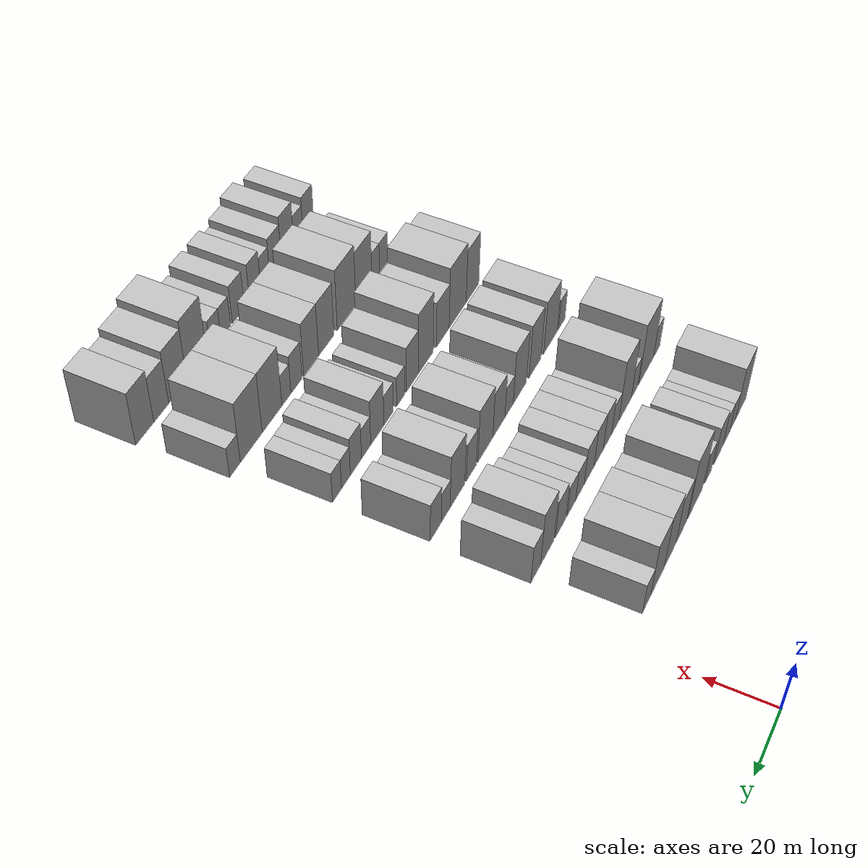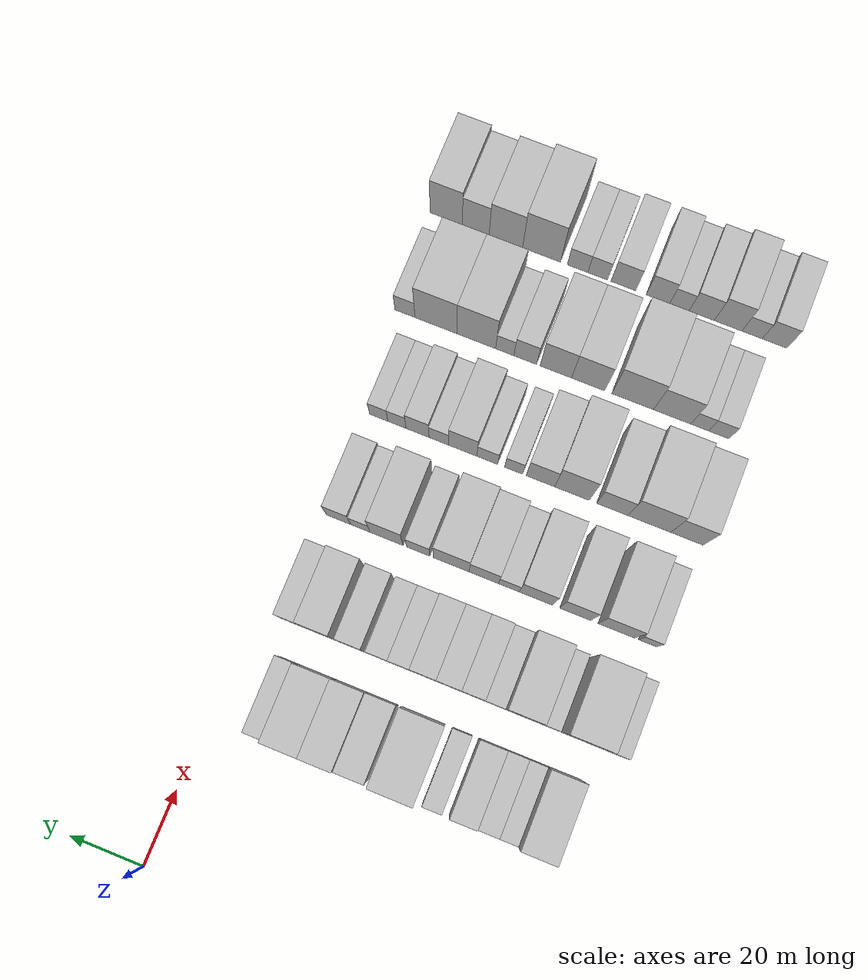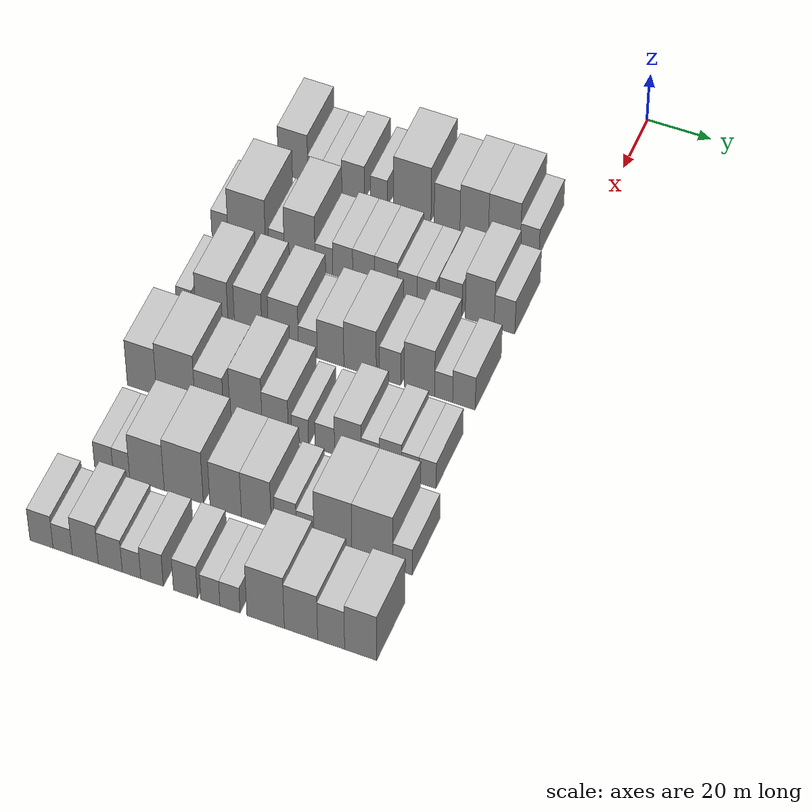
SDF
<sdf version="1.6">
 <world name="default">
  <model name="building_51">
   <static>1</static>
   <pose>50.0000 -87.9250 0 0.000000 0.000000 0.000000</pose>
   <link name="link">
    <pose>0 0 10.50 0 0 0</pose>
    <collision name="collision"><geometry><box><size>20.0000 9.3427 21.0000</size></box></geometry></collision>
    <visual name="visual">
     <cast_shadows>0</cast_shadows>
     <geometry><box><size>20.0000 9.3427 21.0000</size></box></geometry>
     <material>
      <script>
       <uri>model://HANNAS_wall/materials/scripts</uri>
       <uri>model://HANNAS_wall/materials/textures</uri>
       <name>vrc/HANNAS_wall</name>
      </script>
     </material>
    </visual>
   </link>
  </model>
  <model name="building_52">
   <static>1</static>
   <pose>50.0000 -80.8383 0 0.000000 0.000000 0.000000</pose>
   <link name="link">
    <pose>0 0 6.00 0 0 0</pose>
    <collision name="collision"><geometry><box><size>20.0000 4.8306 12.0000</size></box></geometry></collision>
    <visual name="visual">
     <cast_shadows>0</cast_shadows>
     <geometry><box><size>20.0000 4.8306 12.0000</size></box></geometry>
     <material>
      <script>
       <uri>model://HANNAS_wall/materials/scripts</uri>
       <uri>model://HANNAS_wall/materials/textures</uri>
       <name>vrc/HANNAS_wall</name>
      </script>
     </material>
    </visual>
   </link>
  </model>
  <model name="building_53">
   <static>1</static>
   <pose>50.0000 -75.5484 0 0.000000 0.000000 0.000000</pose>
   <link name="link">
    <pose>0 0 6.00 0 0 0</pose>
    <collision name="collision"><geometry><box><size>20.0000 5.7492 12.0000</size></box></geometry></collision>
    <visual name="visual">
     <cast_shadows>0</cast_shadows>
     <geometry><box><size>20.0000 5.7492 12.0000</size></box></geometry>
     <material>
      <script>
       <uri>model://HANNAS_wall/materials/scripts</uri>
       <uri>model://HANNAS_wall/materials/textures</uri>
       <name>vrc/HANNAS_wall</name>
      </script>
     </material>
    </visual>
   </link>
  </model>
  <model name="building_54">
   <static>1</static>
   <pose>50.0000 -69.0643 0 0.000000 0.000000 0.000000</pose>
   <link name="link">
    <pose>0 0 7.50 0 0 0</pose>
    <collision name="collision"><geometry><box><size>20.0000 7.2192 15.0000</size></box></geometry></collision>
    <visual name="visual">
     <cast_shadows>0</cast_shadows>
     <geometry><box><size>20.0000 7.2192 15.0000</size></box></geometry>
     <material>
      <script>
       <uri>model://HANNAS_wall/materials/scripts</uri>
       <uri>model://HANNAS_wall/materials/textures</uri>
       <name>vrc/HANNAS_wall</name>
      </script>
     </material>
    </visual>
   </link>
  </model>
  <model name="building_55">
   <static>1</static>
   <pose>50.0000 -60.8685 0 0.000000 0.000000 0.000000</pose>
   <link name="link">
    <pose>0 0 6.00 0 0 0</pose>
    <collision name="collision"><geometry><box><size>20.0000 5.1723 12.0000</size></box></geometry></collision>
    <visual name="visual">
     <cast_shadows>0</cast_shadows>
     <geometry><box><size>20.0000 5.1723 12.0000</size></box></geometry>
     <material>
      <script>
       <uri>model://HANNAS_wall/materials/scripts</uri>
       <uri>model://HANNAS_wall/materials/textures</uri>
       <name>vrc/HANNAS_wall</name>
      </script>
     </material>
    </visual>
   </link>
  </model>
  <model name="building_56">
   <static>1</static>
   <pose>50.0000 -50.4555 0 0.000000 0.000000 0.000000</pose>
   <link name="link">
    <pose>0 0 12.00 0 0 0</pose>
    <collision name="collision"><geometry><box><size>20.0000 11.6537 24.0000</size></box></geometry></collision>
    <visual name="visual">
     <cast_shadows>0</cast_shadows>
     <geometry><box><size>20.0000 11.6537 24.0000</size></box></geometry>
     <material>
      <script>
       <uri>model://HANNAS_wall/materials/scripts</uri>
       <uri>model://HANNAS_wall/materials/textures</uri>
       <name>vrc/HANNAS_wall</name>
      </script>
     </material>
    </visual>
   </link>
  </model>
  <model name="building_57">
   <static>1</static>
   <pose>50.0000 -39.6158 0 0.000000 0.000000 0.000000</pose>
   <link name="link">
    <pose>0 0 9.00 0 0 0</pose>
    <collision name="collision"><geometry><box><size>20.0000 8.0258 18.0000</size></box></geometry></collision>
    <visual name="visual">
     <cast_shadows>0</cast_shadows>
     <geometry><box><size>20.0000 8.0258 18.0000</size></box></geometry>
     <material>
      <script>
       <uri>model://HANNAS_wall/materials/scripts</uri>
       <uri>model://HANNAS_wall/materials/textures</uri>
       <name>vrc/HANNAS_wall</name>
      </script>
     </material>
    </visual>
   </link>
  </model>
  <model name="building_58">
   <static>1</static>
   <pose>50.0000 -31.1986 0 0.000000 0.000000 0.000000</pose>
   <link name="link">
    <pose>0 0 10.50 0 0 0</pose>
    <collision name="collision"><geometry><box><size>20.0000 8.8084 21.0000</size></box></geometry></collision>
    <visual name="visual">
     <cast_shadows>0</cast_shadows>
     <geometry><box><size>20.0000 8.8084 21.0000</size></box></geometry>
     <material>
      <script>
       <uri>model://HANNAS_wall/materials/scripts</uri>
       <uri>model://HANNAS_wall/materials/textures</uri>
       <name>vrc/HANNAS_wall</name>
      </script>
     </material>
    </visual>
   </link>
  </model>
  <model name="building_59">
   <static>1</static>
   <pose>50.0000 -21.8745 0 0.000000 0.000000 0.000000</pose>
   <link name="link">
    <pose>0 0 10.50 0 0 0</pose>
    <collision name="collision"><geometry><box><size>20.0000 9.8399 21.0000</size></box></geometry></collision>
    <visual name="visual">
     <cast_shadows>0</cast_shadows>
     <geometry><box><size>20.0000 9.8399 21.0000</size></box></geometry>
     <material>
      <script>
       <uri>model://HANNAS_wall/materials/scripts</uri>
       <uri>model://HANNAS_wall/materials/textures</uri>
       <name>vrc/HANNAS_wall</name>
      </script>
     </material>
    </visual>
   </link>
  </model>
  <model name="building_60">
   <static>1</static>
   <pose>50.0000 -14.0506 0 0.000000 0.000000 0.000000</pose>
   <link name="link">
    <pose>0 0 6.00 0 0 0</pose>
    <collision name="collision"><geometry><box><size>20.0000 5.8078 12.0000</size></box></geometry></collision>
    <visual name="visual">
     <cast_shadows>0</cast_shadows>
     <geometry><box><size>20.0000 5.8078 12.0000</size></box></geometry>
     <material>
      <script>
       <uri>model://HANNAS_wall/materials/scripts</uri>
       <uri>model://HANNAS_wall/materials/textures</uri>
       <name>vrc/HANNAS_wall</name>
      </script>
     </material>
    </visual>
   </link>
  </model>
  <model name="building_165">
   <static>1</static>
   <pose>79.0000 -98.4774 0 0.000000 0.000000 0.000000</pose>
   <link name="link">
    <pose>0 0 6.00 0 0 0</pose>
    <collision name="collision"><geometry><box><size>20.0000 5.1457 12.0000</size></box></geometry></collision>
    <visual name="visual">
     <cast_shadows>0</cast_shadows>
     <geometry><box><size>20.0000 5.1457 12.0000</size></box></geometry>
     <material>
      <script>
       <uri>model://HANNAS_wall/materials/scripts</uri>
       <uri>model://HANNAS_wall/materials/textures</uri>
       <name>vrc/HANNAS_wall</name>
      </script>
     </material>
    </visual>
   </link>
  </model>
  <model name="building_166">
   <static>1</static>
   <pose>79.0000 -90.0048 0 0.000000 0.000000 0.000000</pose>
   <link name="link">
    <pose>0 0 12.00 0 0 0</pose>
    <collision name="collision"><geometry><box><size>20.0000 11.7995 24.0000</size></box></geometry></collision>
    <visual name="visual">
     <cast_shadows>0</cast_shadows>
     <geometry><box><size>20.0000 11.7995 24.0000</size></box></geometry>
     <material>
      <script>
       <uri>model://HANNAS_wall/materials/scripts</uri>
       <uri>model://HANNAS_wall/materials/textures</uri>
       <name>vrc/HANNAS_wall</name>
      </script>
     </material>
    </visual>
   </link>
  </model>
  <model name="building_167">
   <static>1</static>
   <pose>79.0000 -80.6859 0 0.000000 0.000000 0.000000</pose>
   <link name="link">
    <pose>0 0 6.00 0 0 0</pose>
    <collision name="collision"><geometry><box><size>20.0000 4.8383 12.0000</size></box></geometry></collision>
    <visual name="visual">
     <cast_shadows>0</cast_shadows>
     <geometry><box><size>20.0000 4.8383 12.0000</size></box></geometry>
     <material>
      <script>
       <uri>model://HANNAS_wall/materials/scripts</uri>
       <uri>model://HANNAS_wall/materials/textures</uri>
       <name>vrc/HANNAS_wall</name>
      </script>
     </material>
    </visual>
   </link>
  </model>
  <model name="building_168">
   <static>1</static>
   <pose>79.0000 -73.4651 0 0.000000 0.000000 0.000000</pose>
   <link name="link">
    <pose>0 0 12.00 0 0 0</pose>
    <collision name="collision"><geometry><box><size>20.0000 9.6032 24.0000</size></box></geometry></collision>
    <visual name="visual">
     <cast_shadows>0</cast_shadows>
     <geometry><box><size>20.0000 9.6032 24.0000</size></box></geometry>
     <material>
      <script>
       <uri>model://HANNAS_wall/materials/scripts</uri>
       <uri>model://HANNAS_wall/materials/textures</uri>
       <name>vrc/HANNAS_wall</name>
      </script>
     </material>
    </visual>
   </link>
  </model>
  <model name="building_169">
   <static>1</static>
   <pose>79.0000 -65.9475 0 0.000000 0.000000 0.000000</pose>
   <link name="link">
    <pose>0 0 6.00 0 0 0</pose>
    <collision name="collision"><geometry><box><size>20.0000 5.4320 12.0000</size></box></geometry></collision>
    <visual name="visual">
     <cast_shadows>0</cast_shadows>
     <geometry><box><size>20.0000 5.4320 12.0000</size></box></geometry>
     <material>
      <script>
       <uri>model://HANNAS_wall/materials/scripts</uri>
       <uri>model://HANNAS_wall/materials/textures</uri>
       <name>vrc/HANNAS_wall</name>
      </script>
     </material>
    </visual>
   </link>
  </model>
  <model name="building_170">
   <static>1</static>
   <pose>79.0000 -60.1310 0 0.000000 0.000000 0.000000</pose>
   <link name="link">
    <pose>0 0 7.50 0 0 0</pose>
    <collision name="collision"><geometry><box><size>20.0000 6.2009 15.0000</size></box></geometry></collision>
    <visual name="visual">
     <cast_shadows>0</cast_shadows>
     <geometry><box><size>20.0000 6.2009 15.0000</size></box></geometry>
     <material>
      <script>
       <uri>model://HANNAS_wall/materials/scripts</uri>
       <uri>model://HANNAS_wall/materials/textures</uri>
       <name>vrc/HANNAS_wall</name>
      </script>
     </material>
    </visual>
   </link>
  </model>
  <model name="building_171">
   <static>1</static>
   <pose>79.0000 -53.6498 0 0.000000 0.000000 0.000000</pose>
   <link name="link">
    <pose>0 0 7.50 0 0 0</pose>
    <collision name="collision"><geometry><box><size>20.0000 6.7614 15.0000</size></box></geometry></collision>
    <visual name="visual">
     <cast_shadows>0</cast_shadows>
     <geometry><box><size>20.0000 6.7614 15.0000</size></box></geometry>
     <material>
      <script>
       <uri>model://HANNAS_wall/materials/scripts</uri>
       <uri>model://HANNAS_wall/materials/textures</uri>
       <name>vrc/HANNAS_wall</name>
      </script>
     </material>
    </visual>
   </link>
  </model>
  <model name="building_172">
   <static>1</static>
   <pose>79.0000 -46.7324 0 0.000000 0.000000 0.000000</pose>
   <link name="link">
    <pose>0 0 7.50 0 0 0</pose>
    <collision name="collision"><geometry><box><size>20.0000 7.0735 15.0000</size></box></geometry></collision>
    <visual name="visual">
     <cast_shadows>0</cast_shadows>
     <geometry><box><size>20.0000 7.0735 15.0000</size></box></geometry>
     <material>
      <script>
       <uri>model://HANNAS_wall/materials/scripts</uri>
       <uri>model://HANNAS_wall/materials/textures</uri>
       <name>vrc/HANNAS_wall</name>
      </script>
     </material>
    </visual>
   </link>
  </model>
  <model name="building_173">
   <static>1</static>
   <pose>79.0000 -40.2377 0 0.000000 0.000000 0.000000</pose>
   <link name="link">
    <pose>0 0 6.00 0 0 0</pose>
    <collision name="collision"><geometry><box><size>20.0000 5.9158 12.0000</size></box></geometry></collision>
    <visual name="visual">
     <cast_shadows>0</cast_shadows>
     <geometry><box><size>20.0000 5.9158 12.0000</size></box></geometry>
     <material>
      <script>
       <uri>model://HANNAS_wall/materials/scripts</uri>
       <uri>model://HANNAS_wall/materials/textures</uri>
       <name>vrc/HANNAS_wall</name>
      </script>
     </material>
    </visual>
   </link>
  </model>
  <model name="building_174">
   <static>1</static>
   <pose>79.0000 -34.3512 0 0.000000 0.000000 0.000000</pose>
   <link name="link">
    <pose>0 0 6.00 0 0 0</pose>
    <collision name="collision"><geometry><box><size>20.0000 5.8573 12.0000</size></box></geometry></collision>
    <visual name="visual">
     <cast_shadows>0</cast_shadows>
     <geometry><box><size>20.0000 5.8573 12.0000</size></box></geometry>
     <material>
      <script>
       <uri>model://HANNAS_wall/materials/scripts</uri>
       <uri>model://HANNAS_wall/materials/textures</uri>
       <name>vrc/HANNAS_wall</name>
      </script>
     </material>
    </visual>
   </link>
  </model>
  <model name="building_175">
   <static>1</static>
   <pose>79.0000 -26.9290 0 0.000000 0.000000 0.000000</pose>
   <link name="link">
    <pose>0 0 7.50 0 0 0</pose>
    <collision name="collision"><geometry><box><size>20.0000 6.9871 15.0000</size></box></geometry></collision>
    <visual name="visual">
     <cast_shadows>0</cast_shadows>
     <geometry><box><size>20.0000 6.9871 15.0000</size></box></geometry>
     <material>
      <script>
       <uri>model://HANNAS_wall/materials/scripts</uri>
       <uri>model://HANNAS_wall/materials/textures</uri>
       <name>vrc/HANNAS_wall</name>
      </script>
     </material>
    </visual>
   </link>
  </model>
  <model name="building_176">
   <static>1</static>
   <pose>79.0000 -18.0084 0 0.000000 0.000000 0.000000</pose>
   <link name="link">
    <pose>0 0 10.50 0 0 0</pose>
    <collision name="collision"><geometry><box><size>20.0000 8.8540 21.0000</size></box></geometry></collision>
    <visual name="visual">
     <cast_shadows>0</cast_shadows>
     <geometry><box><size>20.0000 8.8540 21.0000</size></box></geometry>
     <material>
      <script>
       <uri>model://HANNAS_wall/materials/scripts</uri>
       <uri>model://HANNAS_wall/materials/textures</uri>
       <name>vrc/HANNAS_wall</name>
      </script>
     </material>
    </visual>
   </link>
  </model>
  <model name="building_177">
   <static>1</static>
   <pose>79.0000 -10.4417 0 0.000000 0.000000 0.000000</pose>
   <link name="link">
    <pose>0 0 7.50 0 0 0</pose>
    <collision name="collision"><geometry><box><size>20.0000 6.2794 15.0000</size></box></geometry></collision>
    <visual name="visual">
     <cast_shadows>0</cast_shadows>
     <geometry><box><size>20.0000 6.2794 15.0000</size></box></geometry>
     <material>
      <script>
       <uri>model://HANNAS_wall/materials/scripts</uri>
       <uri>model://HANNAS_wall/materials/textures</uri>
       <name>vrc/HANNAS_wall</name>
      </script>
     </material>
    </visual>
   </link>
  </model>
  <model name="building_285">
   <static>1</static>
   <pose>108.0000 -96.6257 0 0.000000 0.000000 0.000000</pose>
   <link name="link">
    <pose>0 0 6.00 0 0 0</pose>
    <collision name="collision"><geometry><box><size>20.0000 4.9257 12.0000</size></box></geometry></collision>
    <visual name="visual">
     <cast_shadows>0</cast_shadows>
     <geometry><box><size>20.0000 4.9257 12.0000</size></box></geometry>
     <material>
      <script>
       <uri>model://HANNAS_wall/materials/scripts</uri>
       <uri>model://HANNAS_wall/materials/textures</uri>
       <name>vrc/HANNAS_wall</name>
      </script>
     </material>
    </visual>
   </link>
  </model>
  <model name="building_286">
   <static>1</static>
   <pose>108.0000 -88.1577 0 0.000000 0.000000 0.000000</pose>
   <link name="link">
    <pose>0 0 10.50 0 0 0</pose>
    <collision name="collision"><geometry><box><size>20.0000 10.0102 21.0000</size></box></geometry></collision>
    <visual name="visual">
     <cast_shadows>0</cast_shadows>
     <geometry><box><size>20.0000 10.0102 21.0000</size></box></geometry>
     <material>
      <script>
       <uri>model://HANNAS_wall/materials/scripts</uri>
       <uri>model://HANNAS_wall/materials/textures</uri>
       <name>vrc/HANNAS_wall</name>
      </script>
     </material>
    </visual>
   </link>
  </model>
  <model name="building_287">
   <static>1</static>
   <pose>108.0000 -76.9083 0 0.000000 0.000000 0.000000</pose>
   <link name="link">
    <pose>0 0 10.50 0 0 0</pose>
    <collision name="collision"><geometry><box><size>20.0000 8.4886 21.0000</size></box></geometry></collision>
    <visual name="visual">
     <cast_shadows>0</cast_shadows>
     <geometry><box><size>20.0000 8.4886 21.0000</size></box></geometry>
     <material>
      <script>
       <uri>model://HANNAS_wall/materials/scripts</uri>
       <uri>model://HANNAS_wall/materials/textures</uri>
       <name>vrc/HANNAS_wall</name>
      </script>
     </material>
    </visual>
   </link>
  </model>
  <model name="building_288">
   <static>1</static>
   <pose>108.0000 -66.0796 0 0.000000 0.000000 0.000000</pose>
   <link name="link">
    <pose>0 0 10.50 0 0 0</pose>
    <collision name="collision"><geometry><box><size>20.0000 9.1687 21.0000</size></box></geometry></collision>
    <visual name="visual">
     <cast_shadows>0</cast_shadows>
     <geometry><box><size>20.0000 9.1687 21.0000</size></box></geometry>
     <material>
      <script>
       <uri>model://HANNAS_wall/materials/scripts</uri>
       <uri>model://HANNAS_wall/materials/textures</uri>
       <name>vrc/HANNAS_wall</name>
      </script>
     </material>
    </visual>
   </link>
  </model>
  <model name="building_289">
   <static>1</static>
   <pose>108.0000 -58.6425 0 0.000000 0.000000 0.000000</pose>
   <link name="link">
    <pose>0 0 6.00 0 0 0</pose>
    <collision name="collision"><geometry><box><size>20.0000 5.7055 12.0000</size></box></geometry></collision>
    <visual name="visual">
     <cast_shadows>0</cast_shadows>
     <geometry><box><size>20.0000 5.7055 12.0000</size></box></geometry>
     <material>
      <script>
       <uri>model://HANNAS_wall/materials/scripts</uri>
       <uri>model://HANNAS_wall/materials/textures</uri>
       <name>vrc/HANNAS_wall</name>
      </script>
     </material>
    </visual>
   </link>
  </model>
  <model name="building_290">
   <static>1</static>
   <pose>108.0000 -51.7189 0 0.000000 0.000000 0.000000</pose>
   <link name="link">
    <pose>0 0 9.00 0 0 0</pose>
    <collision name="collision"><geometry><box><size>20.0000 8.1418 18.0000</size></box></geometry></collision>
    <visual name="visual">
     <cast_shadows>0</cast_shadows>
     <geometry><box><size>20.0000 8.1418 18.0000</size></box></geometry>
     <material>
      <script>
       <uri>model://HANNAS_wall/materials/scripts</uri>
       <uri>model://HANNAS_wall/materials/textures</uri>
       <name>vrc/HANNAS_wall</name>
      </script>
     </material>
    </visual>
   </link>
  </model>
  <model name="building_291">
   <static>1</static>
   <pose>108.0000 -42.7160 0 0.000000 0.000000 0.000000</pose>
   <link name="link">
    <pose>0 0 10.50 0 0 0</pose>
    <collision name="collision"><geometry><box><size>20.0000 9.8641 21.0000</size></box></geometry></collision>
    <visual name="visual">
     <cast_shadows>0</cast_shadows>
     <geometry><box><size>20.0000 9.8641 21.0000</size></box></geometry>
     <material>
      <script>
       <uri>model://HANNAS_wall/materials/scripts</uri>
       <uri>model://HANNAS_wall/materials/textures</uri>
       <name>vrc/HANNAS_wall</name>
      </script>
     </material>
    </visual>
   </link>
  </model>
  <model name="building_292">
   <static>1</static>
   <pose>108.0000 -33.5582 0 0.000000 0.000000 0.000000</pose>
   <link name="link">
    <pose>0 0 7.50 0 0 0</pose>
    <collision name="collision"><geometry><box><size>20.0000 6.4515 15.0000</size></box></geometry></collision>
    <visual name="visual">
     <cast_shadows>0</cast_shadows>
     <geometry><box><size>20.0000 6.4515 15.0000</size></box></geometry>
     <material>
      <script>
       <uri>model://HANNAS_wall/materials/scripts</uri>
       <uri>model://HANNAS_wall/materials/textures</uri>
       <name>vrc/HANNAS_wall</name>
      </script>
     </material>
    </visual>
   </link>
  </model>
  <model name="building_293">
   <static>1</static>
   <pose>108.0000 -24.7306 0 0.000000 0.000000 0.000000</pose>
   <link name="link">
    <pose>0 0 10.50 0 0 0</pose>
    <collision name="collision"><geometry><box><size>20.0000 9.2036 21.0000</size></box></geometry></collision>
    <visual name="visual">
     <cast_shadows>0</cast_shadows>
     <geometry><box><size>20.0000 9.2036 21.0000</size></box></geometry>
     <material>
      <script>
       <uri>model://HANNAS_wall/materials/scripts</uri>
       <uri>model://HANNAS_wall/materials/textures</uri>
       <name>vrc/HANNAS_wall</name>
      </script>
     </material>
    </visual>
   </link>
  </model>
  <model name="building_294">
   <static>1</static>
   <pose>108.0000 -17.4049 0 0.000000 0.000000 0.000000</pose>
   <link name="link">
    <pose>0 0 6.00 0 0 0</pose>
    <collision name="collision"><geometry><box><size>20.0000 5.4478 12.0000</size></box></geometry></collision>
    <visual name="visual">
     <cast_shadows>0</cast_shadows>
     <geometry><box><size>20.0000 5.4478 12.0000</size></box></geometry>
     <material>
      <script>
       <uri>model://HANNAS_wall/materials/scripts</uri>
       <uri>model://HANNAS_wall/materials/textures</uri>
       <name>vrc/HANNAS_wall</name>
      </script>
     </material>
    </visual>
   </link>
  </model>
  <model name="building_295">
   <static>1</static>
   <pose>108.0000 -11.2876 0 0.000000 0.000000 0.000000</pose>
   <link name="link">
    <pose>0 0 7.50 0 0 0</pose>
    <collision name="collision"><geometry><box><size>20.0000 6.7867 15.0000</size></box></geometry></collision>
    <visual name="visual">
     <cast_shadows>0</cast_shadows>
     <geometry><box><size>20.0000 6.7867 15.0000</size></box></geometry>
     <material>
      <script>
       <uri>model://HANNAS_wall/materials/scripts</uri>
       <uri>model://HANNAS_wall/materials/textures</uri>
       <name>vrc/HANNAS_wall</name>
      </script>
     </material>
    </visual>
   </link>
  </model>
  <model name="building_397">
   <static>1</static>
   <pose>137.0000 -96.8332 0 0.000000 0.000000 0.000000</pose>
   <link name="link">
    <pose>0 0 10.50 0 0 0</pose>
    <collision name="collision"><geometry><box><size>20.0000 8.9908 21.0000</size></box></geometry></collision>
    <visual name="visual">
     <cast_shadows>0</cast_shadows>
     <geometry><box><size>20.0000 8.9908 21.0000</size></box></geometry>
     <material>
      <script>
       <uri>model://HANNAS_wall/materials/scripts</uri>
       <uri>model://HANNAS_wall/materials/textures</uri>
       <name>vrc/HANNAS_wall</name>
      </script>
     </material>
    </visual>
   </link>
  </model>
  <model name="building_398">
   <static>1</static>
   <pose>137.0000 -86.4353 0 0.000000 0.000000 0.000000</pose>
   <link name="link">
    <pose>0 0 12.00 0 0 0</pose>
    <collision name="collision"><geometry><box><size>20.0000 11.8051 24.0000</size></box></geometry></collision>
    <visual name="visual">
     <cast_shadows>0</cast_shadows>
     <geometry><box><size>20.0000 11.8051 24.0000</size></box></geometry>
     <material>
      <script>
       <uri>model://HANNAS_wall/materials/scripts</uri>
       <uri>model://HANNAS_wall/materials/textures</uri>
       <name>vrc/HANNAS_wall</name>
      </script>
     </material>
    </visual>
   </link>
  </model>
  <model name="building_399">
   <static>1</static>
   <pose>137.0000 -76.1800 0 0.000000 0.000000 0.000000</pose>
   <link name="link">
    <pose>0 0 9.00 0 0 0</pose>
    <collision name="collision"><geometry><box><size>20.0000 8.7055 18.0000</size></box></geometry></collision>
    <visual name="visual">
     <cast_shadows>0</cast_shadows>
     <geometry><box><size>20.0000 8.7055 18.0000</size></box></geometry>
     <material>
      <script>
       <uri>model://HANNAS_wall/materials/scripts</uri>
       <uri>model://HANNAS_wall/materials/textures</uri>
       <name>vrc/HANNAS_wall</name>
      </script>
     </material>
    </visual>
   </link>
  </model>
  <model name="building_400">
   <static>1</static>
   <pose>137.0000 -64.9632 0 0.000000 0.000000 0.000000</pose>
   <link name="link">
    <pose>0 0 12.00 0 0 0</pose>
    <collision name="collision"><geometry><box><size>20.0000 9.7283 24.0000</size></box></geometry></collision>
    <visual name="visual">
     <cast_shadows>0</cast_shadows>
     <geometry><box><size>20.0000 9.7283 24.0000</size></box></geometry>
     <material>
      <script>
       <uri>model://HANNAS_wall/materials/scripts</uri>
       <uri>model://HANNAS_wall/materials/textures</uri>
       <name>vrc/HANNAS_wall</name>
      </script>
     </material>
    </visual>
   </link>
  </model>
  <model name="building_401">
   <static>1</static>
   <pose>137.0000 -56.1355 0 0.000000 0.000000 0.000000</pose>
   <link name="link">
    <pose>0 0 9.00 0 0 0</pose>
    <collision name="collision"><geometry><box><size>20.0000 7.9271 18.0000</size></box></geometry></collision>
    <visual name="visual">
     <cast_shadows>0</cast_shadows>
     <geometry><box><size>20.0000 7.9271 18.0000</size></box></geometry>
     <material>
      <script>
       <uri>model://HANNAS_wall/materials/scripts</uri>
       <uri>model://HANNAS_wall/materials/textures</uri>
       <name>vrc/HANNAS_wall</name>
      </script>
     </material>
    </visual>
   </link>
  </model>
  <model name="building_402">
   <static>1</static>
   <pose>137.0000 -48.6570 0 0.000000 0.000000 0.000000</pose>
   <link name="link">
    <pose>0 0 6.00 0 0 0</pose>
    <collision name="collision"><geometry><box><size>20.0000 5.0297 12.0000</size></box></geometry></collision>
    <visual name="visual">
     <cast_shadows>0</cast_shadows>
     <geometry><box><size>20.0000 5.0297 12.0000</size></box></geometry>
     <material>
      <script>
       <uri>model://HANNAS_wall/materials/scripts</uri>
       <uri>model://HANNAS_wall/materials/textures</uri>
       <name>vrc/HANNAS_wall</name>
      </script>
     </material>
    </visual>
   </link>
  </model>
  <model name="building_403">
   <static>1</static>
   <pose>137.0000 -41.2162 0 0.000000 0.000000 0.000000</pose>
   <link name="link">
    <pose>0 0 6.00 0 0 0</pose>
    <collision name="collision"><geometry><box><size>20.0000 5.8520 12.0000</size></box></geometry></collision>
    <visual name="visual">
     <cast_shadows>0</cast_shadows>
     <geometry><box><size>20.0000 5.8520 12.0000</size></box></geometry>
     <material>
      <script>
       <uri>model://HANNAS_wall/materials/scripts</uri>
       <uri>model://HANNAS_wall/materials/textures</uri>
       <name>vrc/HANNAS_wall</name>
      </script>
     </material>
    </visual>
   </link>
  </model>
  <model name="building_404">
   <static>1</static>
   <pose>137.0000 -34.2851 0 0.000000 0.000000 0.000000</pose>
   <link name="link">
    <pose>0 0 9.00 0 0 0</pose>
    <collision name="collision"><geometry><box><size>20.0000 8.0101 18.0000</size></box></geometry></collision>
    <visual name="visual">
     <cast_shadows>0</cast_shadows>
     <geometry><box><size>20.0000 8.0101 18.0000</size></box></geometry>
     <material>
      <script>
       <uri>model://HANNAS_wall/materials/scripts</uri>
       <uri>model://HANNAS_wall/materials/textures</uri>
       <name>vrc/HANNAS_wall</name>
      </script>
     </material>
    </visual>
   </link>
  </model>
  <model name="building_405">
   <static>1</static>
   <pose>137.0000 -27.5419 0 0.000000 0.000000 0.000000</pose>
   <link name="link">
    <pose>0 0 6.00 0 0 0</pose>
    <collision name="collision"><geometry><box><size>20.0000 5.4763 12.0000</size></box></geometry></collision>
    <visual name="visual">
     <cast_shadows>0</cast_shadows>
     <geometry><box><size>20.0000 5.4763 12.0000</size></box></geometry>
     <material>
      <script>
       <uri>model://HANNAS_wall/materials/scripts</uri>
       <uri>model://HANNAS_wall/materials/textures</uri>
       <name>vrc/HANNAS_wall</name>
      </script>
     </material>
    </visual>
   </link>
  </model>
  <model name="building_406">
   <static>1</static>
   <pose>137.0000 -21.5495 0 0.000000 0.000000 0.000000</pose>
   <link name="link">
    <pose>0 0 7.50 0 0 0</pose>
    <collision name="collision"><geometry><box><size>20.0000 6.5085 15.0000</size></box></geometry></collision>
    <visual name="visual">
     <cast_shadows>0</cast_shadows>
     <geometry><box><size>20.0000 6.5085 15.0000</size></box></geometry>
     <material>
      <script>
       <uri>model://HANNAS_wall/materials/scripts</uri>
       <uri>model://HANNAS_wall/materials/textures</uri>
       <name>vrc/HANNAS_wall</name>
      </script>
     </material>
    </visual>
   </link>
  </model>
  <model name="building_407">
   <static>1</static>
   <pose>137.0000 -15.7208 0 0.000000 0.000000 0.000000</pose>
   <link name="link">
    <pose>0 0 6.00 0 0 0</pose>
    <collision name="collision"><geometry><box><size>20.0000 5.1489 12.0000</size></box></geometry></collision>
    <visual name="visual">
     <cast_shadows>0</cast_shadows>
     <geometry><box><size>20.0000 5.1489 12.0000</size></box></geometry>
     <material>
      <script>
       <uri>model://HANNAS_wall/materials/scripts</uri>
       <uri>model://HANNAS_wall/materials/textures</uri>
       <name>vrc/HANNAS_wall</name>
      </script>
     </material>
    </visual>
   </link>
  </model>
  <model name="building_408">
   <static>1</static>
   <pose>137.0000 -10.5659 0 0.000000 0.000000 0.000000</pose>
   <link name="link">
    <pose>0 0 6.00 0 0 0</pose>
    <collision name="collision"><geometry><box><size>20.0000 5.1609 12.0000</size></box></geometry></collision>
    <visual name="visual">
     <cast_shadows>0</cast_shadows>
     <geometry><box><size>20.0000 5.1609 12.0000</size></box></geometry>
     <material>
      <script>
       <uri>model://HANNAS_wall/materials/scripts</uri>
       <uri>model://HANNAS_wall/materials/textures</uri>
       <name>vrc/HANNAS_wall</name>
      </script>
     </material>
    </visual>
   </link>
  </model>
  <model name="building_511">
   <static>1</static>
   <pose>166.0000 -95.2615 0 0.000000 0.000000 0.000000</pose>
   <link name="link">
    <pose>0 0 6.00 0 0 0</pose>
    <collision name="collision"><geometry><box><size>20.0000 5.6468 12.0000</size></box></geometry></collision>
    <visual name="visual">
     <cast_shadows>0</cast_shadows>
     <geometry><box><size>20.0000 5.6468 12.0000</size></box></geometry>
     <material>
      <script>
       <uri>model://HANNAS_wall/materials/scripts</uri>
       <uri>model://HANNAS_wall/materials/textures</uri>
       <name>vrc/HANNAS_wall</name>
      </script>
     </material>
    </visual>
   </link>
  </model>
  <model name="building_512">
   <static>1</static>
   <pose>166.0000 -89.9263 0 0.000000 0.000000 0.000000</pose>
   <link name="link">
    <pose>0 0 6.00 0 0 0</pose>
    <collision name="collision"><geometry><box><size>20.0000 5.0237 12.0000</size></box></geometry></collision>
    <visual name="visual">
     <cast_shadows>0</cast_shadows>
     <geometry><box><size>20.0000 5.0237 12.0000</size></box></geometry>
     <material>
      <script>
       <uri>model://HANNAS_wall/materials/scripts</uri>
       <uri>model://HANNAS_wall/materials/textures</uri>
       <name>vrc/HANNAS_wall</name>
      </script>
     </material>
    </visual>
   </link>
  </model>
  <model name="building_513">
   <static>1</static>
   <pose>166.0000 -82.1870 0 0.000000 0.000000 0.000000</pose>
   <link name="link">
    <pose>0 0 10.50 0 0 0</pose>
    <collision name="collision"><geometry><box><size>20.0000 10.4549 21.0000</size></box></geometry></collision>
    <visual name="visual">
     <cast_shadows>0</cast_shadows>
     <geometry><box><size>20.0000 10.4549 21.0000</size></box></geometry>
     <material>
      <script>
       <uri>model://HANNAS_wall/materials/scripts</uri>
       <uri>model://HANNAS_wall/materials/textures</uri>
       <name>vrc/HANNAS_wall</name>
      </script>
     </material>
    </visual>
   </link>
  </model>
  <model name="building_514">
   <static>1</static>
   <pose>166.0000 -71.0775 0 0.000000 0.000000 0.000000</pose>
   <link name="link">
    <pose>0 0 12.00 0 0 0</pose>
    <collision name="collision"><geometry><box><size>20.0000 11.7641 24.0000</size></box></geometry></collision>
    <visual name="visual">
     <cast_shadows>0</cast_shadows>
     <geometry><box><size>20.0000 11.7641 24.0000</size></box></geometry>
     <material>
      <script>
       <uri>model://HANNAS_wall/materials/scripts</uri>
       <uri>model://HANNAS_wall/materials/textures</uri>
       <name>vrc/HANNAS_wall</name>
      </script>
     </material>
    </visual>
   </link>
  </model>
  <model name="building_515">
   <static>1</static>
   <pose>166.0000 -58.4921 0 0.000000 0.000000 0.000000</pose>
   <link name="link">
    <pose>0 0 10.50 0 0 0</pose>
    <collision name="collision"><geometry><box><size>20.0000 9.4066 21.0000</size></box></geometry></collision>
    <visual name="visual">
     <cast_shadows>0</cast_shadows>
     <geometry><box><size>20.0000 9.4066 21.0000</size></box></geometry>
     <material>
      <script>
       <uri>model://HANNAS_wall/materials/scripts</uri>
       <uri>model://HANNAS_wall/materials/textures</uri>
       <name>vrc/HANNAS_wall</name>
      </script>
     </material>
    </visual>
   </link>
  </model>
  <model name="building_516">
   <static>1</static>
   <pose>166.0000 -49.3290 0 0.000000 0.000000 0.000000</pose>
   <link name="link">
    <pose>0 0 10.50 0 0 0</pose>
    <collision name="collision"><geometry><box><size>20.0000 8.9196 21.0000</size></box></geometry></collision>
    <visual name="visual">
     <cast_shadows>0</cast_shadows>
     <geometry><box><size>20.0000 8.9196 21.0000</size></box></geometry>
     <material>
      <script>
       <uri>model://HANNAS_wall/materials/scripts</uri>
       <uri>model://HANNAS_wall/materials/textures</uri>
       <name>vrc/HANNAS_wall</name>
      </script>
     </material>
    </visual>
   </link>
  </model>
  <model name="building_517">
   <static>1</static>
   <pose>166.0000 -40.6338 0 0.000000 0.000000 0.000000</pose>
   <link name="link">
    <pose>0 0 7.50 0 0 0</pose>
    <collision name="collision"><geometry><box><size>20.0000 6.4709 15.0000</size></box></geometry></collision>
    <visual name="visual">
     <cast_shadows>0</cast_shadows>
     <geometry><box><size>20.0000 6.4709 15.0000</size></box></geometry>
     <material>
      <script>
       <uri>model://HANNAS_wall/materials/scripts</uri>
       <uri>model://HANNAS_wall/materials/textures</uri>
       <name>vrc/HANNAS_wall</name>
      </script>
     </material>
    </visual>
   </link>
  </model>
  <model name="building_518">
   <static>1</static>
   <pose>166.0000 -34.7931 0 0.000000 0.000000 0.000000</pose>
   <link name="link">
    <pose>0 0 6.00 0 0 0</pose>
    <collision name="collision"><geometry><box><size>20.0000 5.2104 12.0000</size></box></geometry></collision>
    <visual name="visual">
     <cast_shadows>0</cast_shadows>
     <geometry><box><size>20.0000 5.2104 12.0000</size></box></geometry>
     <material>
      <script>
       <uri>model://HANNAS_wall/materials/scripts</uri>
       <uri>model://HANNAS_wall/materials/textures</uri>
       <name>vrc/HANNAS_wall</name>
      </script>
     </material>
    </visual>
   </link>
  </model>
  <model name="building_519">
   <static>1</static>
   <pose>166.0000 -26.5996 0 0.000000 0.000000 0.000000</pose>
   <link name="link">
    <pose>0 0 12.00 0 0 0</pose>
    <collision name="collision"><geometry><box><size>20.0000 11.1766 24.0000</size></box></geometry></collision>
    <visual name="visual">
     <cast_shadows>0</cast_shadows>
     <geometry><box><size>20.0000 11.1766 24.0000</size></box></geometry>
     <material>
      <script>
       <uri>model://HANNAS_wall/materials/scripts</uri>
       <uri>model://HANNAS_wall/materials/textures</uri>
       <name>vrc/HANNAS_wall</name>
      </script>
     </material>
    </visual>
   </link>
  </model>
  <model name="building_520">
   <static>1</static>
   <pose>166.0000 -15.0115 0 0.000000 0.000000 0.000000</pose>
   <link name="link">
    <pose>0 0 12.00 0 0 0</pose>
    <collision name="collision"><geometry><box><size>20.0000 11.9998 24.0000</size></box></geometry></collision>
    <visual name="visual">
     <cast_shadows>0</cast_shadows>
     <geometry><box><size>20.0000 11.9998 24.0000</size></box></geometry>
     <material>
      <script>
       <uri>model://HANNAS_wall/materials/scripts</uri>
       <uri>model://HANNAS_wall/materials/textures</uri>
       <name>vrc/HANNAS_wall</name>
      </script>
     </material>
    </visual>
   </link>
  </model>
  <model name="building_521">
   <static>1</static>
   <pose>166.0000 -6.1276 0 0.000000 0.000000 0.000000</pose>
   <link name="link">
    <pose>0 0 6.00 0 0 0</pose>
    <collision name="collision"><geometry><box><size>20.0000 5.7679 12.0000</size></box></geometry></collision>
    <visual name="visual">
     <cast_shadows>0</cast_shadows>
     <geometry><box><size>20.0000 5.7679 12.0000</size></box></geometry>
     <material>
      <script>
       <uri>model://HANNAS_wall/materials/scripts</uri>
       <uri>model://HANNAS_wall/materials/textures</uri>
       <name>vrc/HANNAS_wall</name>
      </script>
     </material>
    </visual>
   </link>
  </model>
  <model name="building_625">
   <static>1</static>
   <pose>195.0000 -100.5961 0 0.000000 0.000000 0.000000</pose>
   <link name="link">
    <pose>0 0 7.50 0 0 0</pose>
    <collision name="collision"><geometry><box><size>20.0000 6.9196 15.0000</size></box></geometry></collision>
    <visual name="visual">
     <cast_shadows>0</cast_shadows>
     <geometry><box><size>20.0000 6.9196 15.0000</size></box></geometry>
     <material>
      <script>
       <uri>model://HANNAS_wall/materials/scripts</uri>
       <uri>model://HANNAS_wall/materials/textures</uri>
       <name>vrc/HANNAS_wall</name>
      </script>
     </material>
    </visual>
   </link>
  </model>
  <model name="building_626">
   <static>1</static>
   <pose>195.0000 -94.2477 0 0.000000 0.000000 0.000000</pose>
   <link name="link">
    <pose>0 0 6.00 0 0 0</pose>
    <collision name="collision"><geometry><box><size>20.0000 5.7772 12.0000</size></box></geometry></collision>
    <visual name="visual">
     <cast_shadows>0</cast_shadows>
     <geometry><box><size>20.0000 5.7772 12.0000</size></box></geometry>
     <material>
      <script>
       <uri>model://HANNAS_wall/materials/scripts</uri>
       <uri>model://HANNAS_wall/materials/textures</uri>
       <name>vrc/HANNAS_wall</name>
      </script>
     </material>
    </visual>
   </link>
  </model>
  <model name="building_627">
   <static>1</static>
   <pose>195.0000 -87.4570 0 0.000000 0.000000 0.000000</pose>
   <link name="link">
    <pose>0 0 9.00 0 0 0</pose>
    <collision name="collision"><geometry><box><size>20.0000 7.8041 18.0000</size></box></geometry></collision>
    <visual name="visual">
     <cast_shadows>0</cast_shadows>
     <geometry><box><size>20.0000 7.8041 18.0000</size></box></geometry>
     <material>
      <script>
       <uri>model://HANNAS_wall/materials/scripts</uri>
       <uri>model://HANNAS_wall/materials/textures</uri>
       <name>vrc/HANNAS_wall</name>
      </script>
     </material>
    </visual>
   </link>
  </model>
  <model name="building_628">
   <static>1</static>
   <pose>195.0000 -79.9702 0 0.000000 0.000000 0.000000</pose>
   <link name="link">
    <pose>0 0 7.50 0 0 0</pose>
    <collision name="collision"><geometry><box><size>20.0000 7.1697 15.0000</size></box></geometry></collision>
    <visual name="visual">
     <cast_shadows>0</cast_shadows>
     <geometry><box><size>20.0000 7.1697 15.0000</size></box></geometry>
     <material>
      <script>
       <uri>model://HANNAS_wall/materials/scripts</uri>
       <uri>model://HANNAS_wall/materials/textures</uri>
       <name>vrc/HANNAS_wall</name>
      </script>
     </material>
    </visual>
   </link>
  </model>
  <model name="building_629">
   <static>1</static>
   <pose>195.0000 -73.6368 0 0.000000 0.000000 0.000000</pose>
   <link name="link">
    <pose>0 0 6.00 0 0 0</pose>
    <collision name="collision"><geometry><box><size>20.0000 5.4970 12.0000</size></box></geometry></collision>
    <visual name="visual">
     <cast_shadows>0</cast_shadows>
     <geometry><box><size>20.0000 5.4970 12.0000</size></box></geometry>
     <material>
      <script>
       <uri>model://HANNAS_wall/materials/scripts</uri>
       <uri>model://HANNAS_wall/materials/textures</uri>
       <name>vrc/HANNAS_wall</name>
      </script>
     </material>
    </visual>
   </link>
  </model>
  <model name="building_630">
   <static>1</static>
   <pose>195.0000 -67.5355 0 0.000000 0.000000 0.000000</pose>
   <link name="link">
    <pose>0 0 7.50 0 0 0</pose>
    <collision name="collision"><geometry><box><size>20.0000 6.7057 15.0000</size></box></geometry></collision>
    <visual name="visual">
     <cast_shadows>0</cast_shadows>
     <geometry><box><size>20.0000 6.7057 15.0000</size></box></geometry>
     <material>
      <script>
       <uri>model://HANNAS_wall/materials/scripts</uri>
       <uri>model://HANNAS_wall/materials/textures</uri>
       <name>vrc/HANNAS_wall</name>
      </script>
     </material>
    </visual>
   </link>
  </model>
  <model name="building_631">
   <static>1</static>
   <pose>195.0000 -57.6350 0 0.000000 0.000000 0.000000</pose>
   <link name="link">
    <pose>0 0 7.50 0 0 0</pose>
    <collision name="collision"><geometry><box><size>20.0000 7.0953 15.0000</size></box></geometry></collision>
    <visual name="visual">
     <cast_shadows>0</cast_shadows>
     <geometry><box><size>20.0000 7.0953 15.0000</size></box></geometry>
     <material>
      <script>
       <uri>model://HANNAS_wall/materials/scripts</uri>
       <uri>model://HANNAS_wall/materials/textures</uri>
       <name>vrc/HANNAS_wall</name>
      </script>
     </material>
    </visual>
   </link>
  </model>
  <model name="building_632">
   <static>1</static>
   <pose>195.0000 -50.2745 0 0.000000 0.000000 0.000000</pose>
   <link name="link">
    <pose>0 0 6.00 0 0 0</pose>
    <collision name="collision"><geometry><box><size>20.0000 5.6255 12.0000</size></box></geometry></collision>
    <visual name="visual">
     <cast_shadows>0</cast_shadows>
     <geometry><box><size>20.0000 5.6255 12.0000</size></box></geometry>
     <material>
      <script>
       <uri>model://HANNAS_wall/materials/scripts</uri>
       <uri>model://HANNAS_wall/materials/textures</uri>
       <name>vrc/HANNAS_wall</name>
      </script>
     </material>
    </visual>
   </link>
  </model>
  <model name="building_633">
   <static>1</static>
   <pose>195.0000 -44.4976 0 0.000000 0.000000 0.000000</pose>
   <link name="link">
    <pose>0 0 6.00 0 0 0</pose>
    <collision name="collision"><geometry><box><size>20.0000 5.9282 12.0000</size></box></geometry></collision>
    <visual name="visual">
     <cast_shadows>0</cast_shadows>
     <geometry><box><size>20.0000 5.9282 12.0000</size></box></geometry>
     <material>
      <script>
       <uri>model://HANNAS_wall/materials/scripts</uri>
       <uri>model://HANNAS_wall/materials/textures</uri>
       <name>vrc/HANNAS_wall</name>
      </script>
     </material>
    </visual>
   </link>
  </model>
  <model name="building_634">
   <static>1</static>
   <pose>195.0000 -34.0520 0 0.000000 0.000000 0.000000</pose>
   <link name="link">
    <pose>0 0 12.00 0 0 0</pose>
    <collision name="collision"><geometry><box><size>20.0000 10.9630 24.0000</size></box></geometry></collision>
    <visual name="visual">
     <cast_shadows>0</cast_shadows>
     <geometry><box><size>20.0000 10.9630 24.0000</size></box></geometry>
     <material>
      <script>
       <uri>model://HANNAS_wall/materials/scripts</uri>
       <uri>model://HANNAS_wall/materials/textures</uri>
       <name>vrc/HANNAS_wall</name>
      </script>
     </material>
    </visual>
   </link>
  </model>
  <model name="building_635">
   <static>1</static>
   <pose>195.0000 -23.7194 0 0.000000 0.000000 0.000000</pose>
   <link name="link">
    <pose>0 0 10.50 0 0 0</pose>
    <collision name="collision"><geometry><box><size>20.0000 9.7022 21.0000</size></box></geometry></collision>
    <visual name="visual">
     <cast_shadows>0</cast_shadows>
     <geometry><box><size>20.0000 9.7022 21.0000</size></box></geometry>
     <material>
      <script>
       <uri>model://HANNAS_wall/materials/scripts</uri>
       <uri>model://HANNAS_wall/materials/textures</uri>
       <name>vrc/HANNAS_wall</name>
      </script>
     </material>
    </visual>
   </link>
  </model>
  <model name="building_636">
   <static>1</static>
   <pose>195.0000 -14.9534 0 0.000000 0.000000 0.000000</pose>
   <link name="link">
    <pose>0 0 9.00 0 0 0</pose>
    <collision name="collision"><geometry><box><size>20.0000 7.8297 18.0000</size></box></geometry></collision>
    <visual name="visual">
     <cast_shadows>0</cast_shadows>
     <geometry><box><size>20.0000 7.8297 18.0000</size></box></geometry>
     <material>
      <script>
       <uri>model://HANNAS_wall/materials/scripts</uri>
       <uri>model://HANNAS_wall/materials/textures</uri>
       <name>vrc/HANNAS_wall</name>
      </script>
     </material>
    </visual>
   </link>
  </model>
  <model name="building_637">
   <static>1</static>
   <pose>195.0000 -6.3688 0 0.000000 0.000000 0.000000</pose>
   <link name="link">
    <pose>0 0 10.50 0 0 0</pose>
    <collision name="collision"><geometry><box><size>20.0000 9.3397 21.0000</size></box></geometry></collision>
    <visual name="visual">
     <cast_shadows>0</cast_shadows>
     <geometry><box><size>20.0000 9.3397 21.0000</size></box></geometry>
     <material>
      <script>
       <uri>model://HANNAS_wall/materials/scripts</uri>
       <uri>model://HANNAS_wall/materials/textures</uri>
       <name>vrc/HANNAS_wall</name>
      </script>
     </material>
    </visual>
   </link>
  </model>
 </world>
</sdf>
